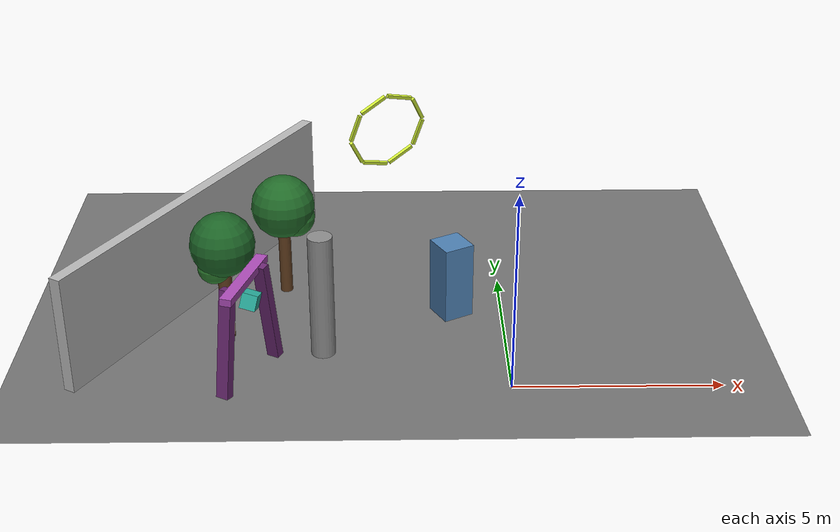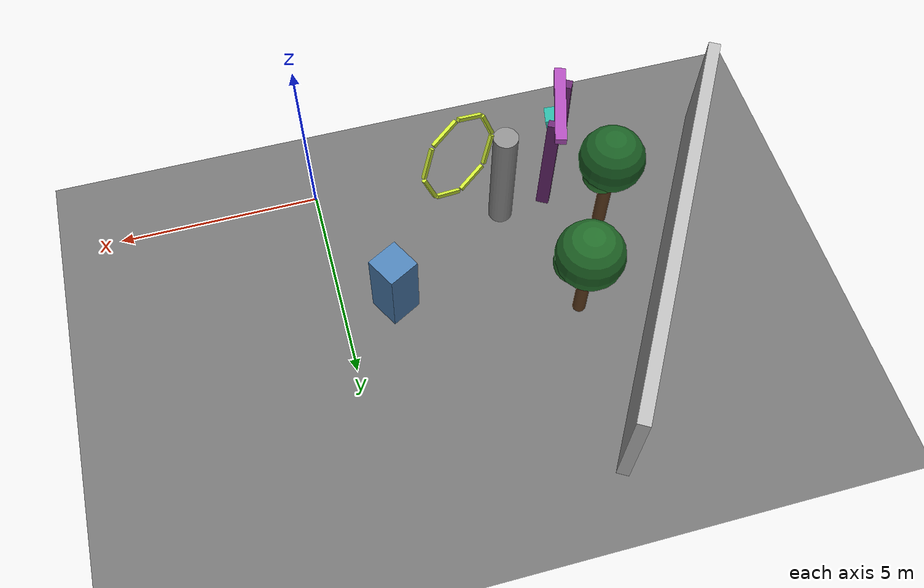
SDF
<sdf version="1.9">
 <world name="test">
  <model name="ground_plane">
   <static>true</static>
   <link name="link">
    <collision name="collision">
     <geometry><plane><normal>0 0 1</normal><size>100 100</size></plane></geometry>
    </collision>
    <visual name="visual">
     <geometry><plane><normal>0 0 1</normal><size>100 100</size></plane></geometry>
     <material>
      <lighting>true</lighting>
      <ambient>0.45 0.45 0.45 1</ambient>
      <diffuse>0.45 0.45 0.45 1</diffuse>
      <specular>0.0 0.0 0.0 1</specular>
     </material>
    </visual>
   </link>
  </model>
  <model name="wall_1">
   <static>true</static>
   <pose>-7.79 4.5 1.5 0 0 1.0472</pose>
   <link name="link">
    <collision name="c"><geometry><box><size>10.39 0.3 3.0</size></box></geometry></collision>
    <visual name="v"><geometry><box><size>10.39 0.3 3.0</size></box></geometry></visual>
   </link>
  </model>
  <model name="obs_box_1">
   <static>true</static>
   <pose>-1.3 3.5 1.0 0 0 0.5</pose>
   <link name="link">
    <collision name="c"><geometry><box><size>0.8 0.8 2.0</size></box></geometry></collision>
    <visual name="v">
     <geometry><box><size>0.8 0.8 2.0</size></box></geometry>
     <material><ambient>0.3 0.5 0.7 1</ambient><diffuse>0.3 0.5 0.7 1</diffuse></material>
    </visual>
   </link>
  </model>
  <model name="obs_cyl_1">
   <static>true</static>
   <pose>-4.5 1.6 1.6 0 0 0</pose>
   <link name="link">
    <collision name="c">
     <geometry><cylinder><radius>0.3</radius><length>3.2</length></cylinder></geometry>
    </collision>
    <visual name="v">
     <geometry><cylinder><radius>0.3</radius><length>3.2</length></cylinder></geometry>
     <material><ambient>0.55 0.55 0.55 1</ambient><diffuse>0.55 0.55 0.55 1</diffuse></material>
    </visual>
   </link>
  </model>
  <model name="tree_0">
   <static>true</static>
   <pose>-5.6 4.7 0 0 0 0.2</pose>
   <link name="link">
    <collision name="trunk">
     <pose>0 0 1.1 0 0 0</pose>
     <geometry><cylinder><radius>0.16</radius><length>2.2</length></cylinder></geometry>
    </collision>
    <collision name="canopy">
     <pose>0 0 2.45 0 0 0</pose>
     <geometry><sphere><radius>0.78</radius></sphere></geometry>
    </collision>
    <visual name="trunk_visual">
     <pose>0 0 1.1 0 0 0</pose>
     <geometry><cylinder><radius>0.16</radius><length>2.2</length></cylinder></geometry>
     <material><ambient>0.38 0.24 0.12 1</ambient><diffuse>0.38 0.24 0.12 1</diffuse></material>
    </visual>
    <visual name="canopy_visual">
     <pose>0 0 2.45 0 0 0</pose>
     <geometry><sphere><radius>0.82</radius></sphere></geometry>
     <material><ambient>0.13 0.42 0.16 1</ambient><diffuse>0.13 0.42 0.16 1</diffuse></material>
    </visual>
    <visual name="canopy_visual_side">
     <pose>0.28 -0.12 2.18 0 0 0</pose>
     <geometry><sphere><radius>0.52</radius></sphere></geometry>
     <material><ambient>0.17 0.48 0.19 1</ambient><diffuse>0.17 0.48 0.19 1</diffuse></material>
    </visual>
   </link>
  </model>
  <model name="tree_6">
   <static>true</static>
   <pose>-6.9 2.4 0 0 0 -0.1</pose>
   <link name="link">
    <collision name="trunk">
     <pose>0 0 1.18 0 0 0</pose>
     <geometry><cylinder><radius>0.17</radius><length>2.36</length></cylinder></geometry>
    </collision>
    <collision name="canopy">
     <pose>0 0 2.58 0 0 0</pose>
     <geometry><sphere><radius>0.76</radius></sphere></geometry>
    </collision>
    <visual name="trunk_visual">
     <pose>0 0 1.18 0 0 0</pose>
     <geometry><cylinder><radius>0.17</radius><length>2.36</length></cylinder></geometry>
     <material><ambient>0.38 0.24 0.12 1</ambient><diffuse>0.38 0.24 0.12 1</diffuse></material>
    </visual>
    <visual name="canopy_visual">
     <pose>0 0 2.58 0 0 0</pose>
     <geometry><sphere><radius>0.8</radius></sphere></geometry>
     <material><ambient>0.11 0.39 0.15 1</ambient><diffuse>0.11 0.39 0.15 1</diffuse></material>
    </visual>
    <visual name="canopy_visual_side">
     <pose>0.22 0.16 2.28 0 0 0</pose>
     <geometry><sphere><radius>0.5</radius></sphere></geometry>
     <material><ambient>0.16 0.47 0.18 1</ambient><diffuse>0.16 0.47 0.18 1</diffuse></material>
    </visual>
    <visual name="canopy_visual_low">
     <pose>-0.2 -0.12 2.02 0 0 0</pose>
     <geometry><sphere><radius>0.42</radius></sphere></geometry>
     <material><ambient>0.18 0.5 0.19 1</ambient><diffuse>0.18 0.5 0.19 1</diffuse></material>
    </visual>
   </link>
  </model>
  <model name="weird_gate_0">
   <static>true</static>
   <pose>-6.2 0.6 0 0 0 1.05</pose>
   <link name="link">
    <collision name="left_leg">
     <pose>-0.85 0 1.35 0 0.15 0</pose>
     <geometry><box><size>0.22 0.32 2.7</size></box></geometry>
    </collision>
    <collision name="right_leg">
     <pose>0.85 0 1.35 0 -0.15 0</pose>
     <geometry><box><size>0.22 0.32 2.7</size></box></geometry>
    </collision>
    <collision name="top_beam">
     <pose>0 0 2.62 0 0 0.22</pose>
     <geometry><box><size>2.2 0.28 0.18</size></box></geometry>
    </collision>
    <collision name="hanging_cube">
     <pose>0 -0.14 2.12 0.2 0.25 0.35</pose>
     <geometry><box><size>0.38 0.38 0.38</size></box></geometry>
    </collision>
    <visual name="left_leg_visual">
     <pose>-0.85 0 1.35 0 0.15 0</pose>
     <geometry><box><size>0.22 0.32 2.7</size></box></geometry>
     <material><ambient>0.42 0.16 0.45 1</ambient><diffuse>0.42 0.16 0.45 1</diffuse></material>
    </visual>
    <visual name="right_leg_visual">
     <pose>0.85 0 1.35 0 -0.15 0</pose>
     <geometry><box><size>0.22 0.32 2.7</size></box></geometry>
     <material><ambient>0.42 0.16 0.45 1</ambient><diffuse>0.42 0.16 0.45 1</diffuse></material>
    </visual>
    <visual name="top_beam_visual">
     <pose>0 0 2.62 0 0 0.22</pose>
     <geometry><box><size>2.2 0.28 0.18</size></box></geometry>
     <material><ambient>0.68 0.3 0.72 1</ambient><diffuse>0.68 0.3 0.72 1</diffuse></material>
    </visual>
    <visual name="hanging_cube_visual">
     <pose>0 -0.14 2.12 0.2 0.25 0.35</pose>
     <geometry><box><size>0.38 0.38 0.38</size></box></geometry>
     <material><ambient>0.18 0.73 0.66 1</ambient><diffuse>0.18 0.73 0.66 1</diffuse></material>
    </visual>
   </link>
  </model>
  <model name="air_ring_5">
   <static>true</static>
   <pose>-2.9 3.2 5.2 0.28 -0.18 2.08</pose>
   <link name="link">
    <collision name="segment_0_collision">
     <pose>0 0.9 0 1.5708 0 0</pose>
     <geometry><box><size>0.08 0.68 0.08</size></box></geometry>
    </collision>
    <collision name="segment_1_collision">
     <pose>0 0.6364 0.6364 2.3562 0 0</pose>
     <geometry><box><size>0.08 0.68 0.08</size></box></geometry>
    </collision>
    <collision name="segment_2_collision">
     <pose>0 0 0.9 3.1416 0 0</pose>
     <geometry><box><size>0.08 0.68 0.08</size></box></geometry>
    </collision>
    <collision name="segment_3_collision">
     <pose>0 -0.6364 0.6364 -2.3562 0 0</pose>
     <geometry><box><size>0.08 0.68 0.08</size></box></geometry>
    </collision>
    <collision name="segment_4_collision">
     <pose>0 -0.9 0 -1.5708 0 0</pose>
     <geometry><box><size>0.08 0.68 0.08</size></box></geometry>
    </collision>
    <collision name="segment_5_collision">
     <pose>0 -0.6364 -0.6364 -0.7854 0 0</pose>
     <geometry><box><size>0.08 0.68 0.08</size></box></geometry>
    </collision>
    <collision name="segment_6_collision">
     <pose>0 0 -0.9 0 0 0</pose>
     <geometry><box><size>0.08 0.68 0.08</size></box></geometry>
    </collision>
    <collision name="segment_7_collision">
     <pose>0 0.6364 -0.6364 0.7854 0 0</pose>
     <geometry><box><size>0.08 0.68 0.08</size></box></geometry>
    </collision>
    <visual name="segment_0_visual">
     <pose>0 0.9 0 1.5708 0 0</pose>
     <geometry><box><size>0.08 0.68 0.08</size></box></geometry>
     <material>
      <ambient>0.84 0.96 0.22 1</ambient>
      <diffuse>0.84 0.96 0.22 1</diffuse>
      <emissive>0.12 0.16 0.02 1</emissive>
     </material>
    </visual>
    <visual name="segment_1_visual">
     <pose>0 0.6364 0.6364 2.3562 0 0</pose>
     <geometry><box><size>0.08 0.68 0.08</size></box></geometry>
     <material>
      <ambient>0.84 0.96 0.22 1</ambient>
      <diffuse>0.84 0.96 0.22 1</diffuse>
      <emissive>0.12 0.16 0.02 1</emissive>
     </material>
    </visual>
    <visual name="segment_2_visual">
     <pose>0 0 0.9 3.1416 0 0</pose>
     <geometry><box><size>0.08 0.68 0.08</size></box></geometry>
     <material>
      <ambient>0.84 0.96 0.22 1</ambient>
      <diffuse>0.84 0.96 0.22 1</diffuse>
      <emissive>0.12 0.16 0.02 1</emissive>
     </material>
    </visual>
    <visual name="segment_3_visual">
     <pose>0 -0.6364 0.6364 -2.3562 0 0</pose>
     <geometry><box><size>0.08 0.68 0.08</size></box></geometry>
     <material>
      <ambient>0.84 0.96 0.22 1</ambient>
      <diffuse>0.84 0.96 0.22 1</diffuse>
      <emissive>0.12 0.16 0.02 1</emissive>
     </material>
    </visual>
    <visual name="segment_4_visual">
     <pose>0 -0.9 0 -1.5708 0 0</pose>
     <geometry><box><size>0.08 0.68 0.08</size></box></geometry>
     <material>
      <ambient>0.84 0.96 0.22 1</ambient>
      <diffuse>0.84 0.96 0.22 1</diffuse>
      <emissive>0.12 0.16 0.02 1</emissive>
     </material>
    </visual>
    <visual name="segment_5_visual">
     <pose>0 -0.6364 -0.6364 -0.7854 0 0</pose>
     <geometry><box><size>0.08 0.68 0.08</size></box></geometry>
     <material>
      <ambient>0.84 0.96 0.22 1</ambient>
      <diffuse>0.84 0.96 0.22 1</diffuse>
      <emissive>0.12 0.16 0.02 1</emissive>
     </material>
    </visual>
    <visual name="segment_6_visual">
     <pose>0 0 -0.9 0 0 0</pose>
     <geometry><box><size>0.08 0.68 0.08</size></box></geometry>
     <material>
      <ambient>0.84 0.96 0.22 1</ambient>
      <diffuse>0.84 0.96 0.22 1</diffuse>
      <emissive>0.12 0.16 0.02 1</emissive>
     </material>
    </visual>
    <visual name="segment_7_visual">
     <pose>0 0.6364 -0.6364 0.7854 0 0</pose>
     <geometry><box><size>0.08 0.68 0.08</size></box></geometry>
     <material>
      <ambient>0.84 0.96 0.22 1</ambient>
      <diffuse>0.84 0.96 0.22 1</diffuse>
      <emissive>0.12 0.16 0.02 1</emissive>
     </material>
    </visual>
   </link>
  </model>
 </world>
</sdf>
